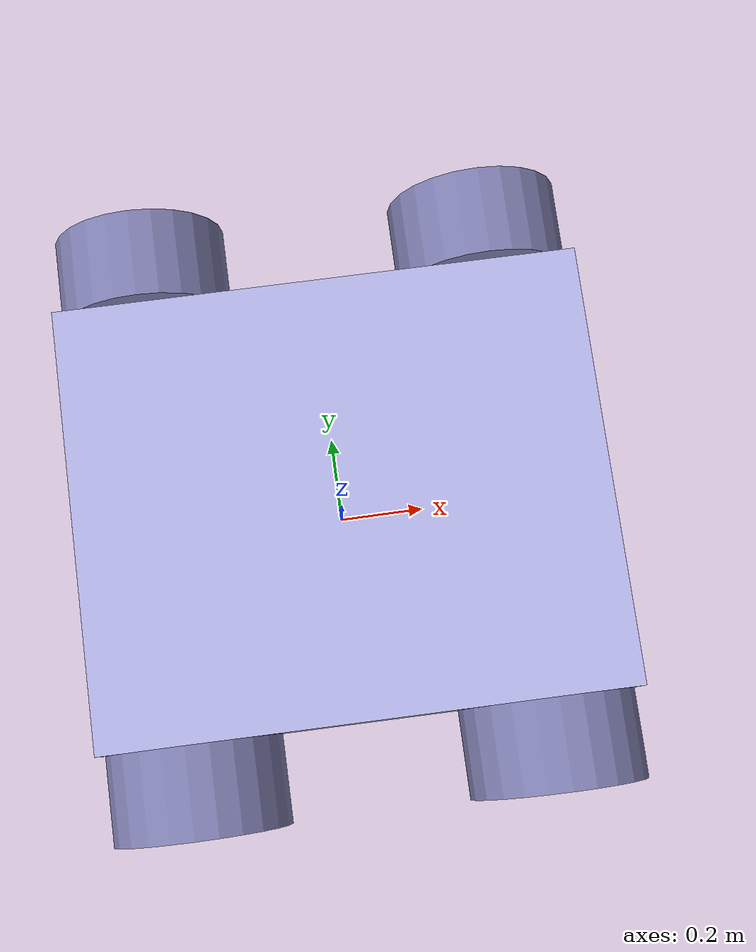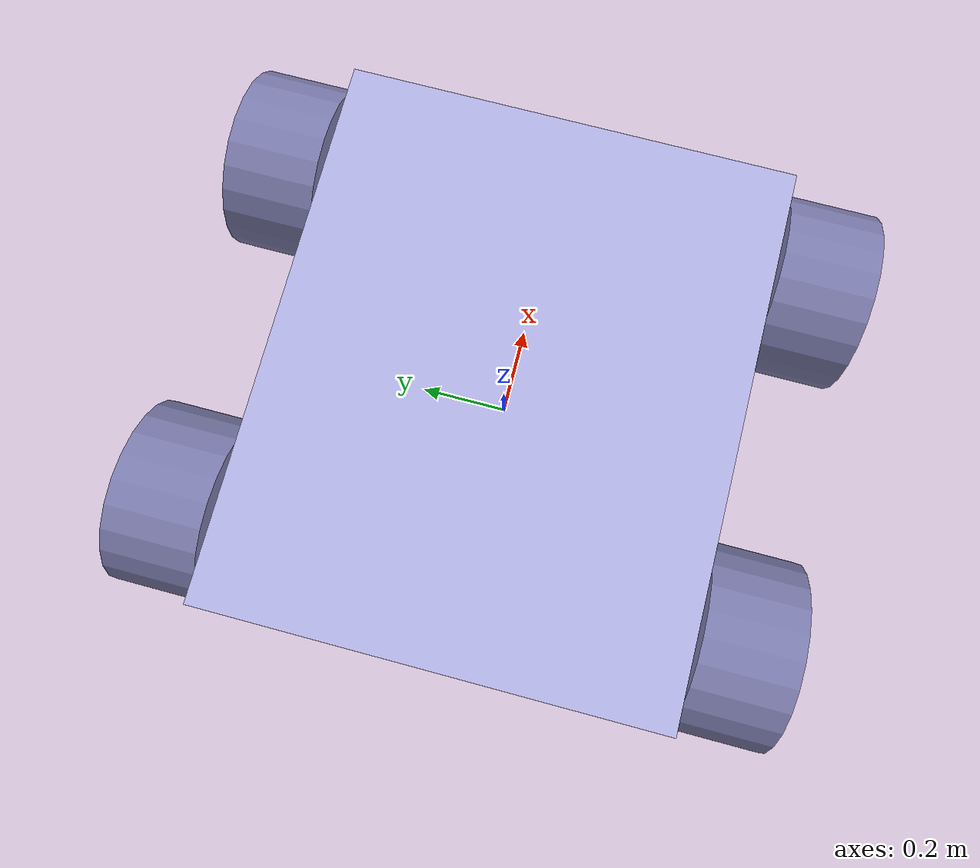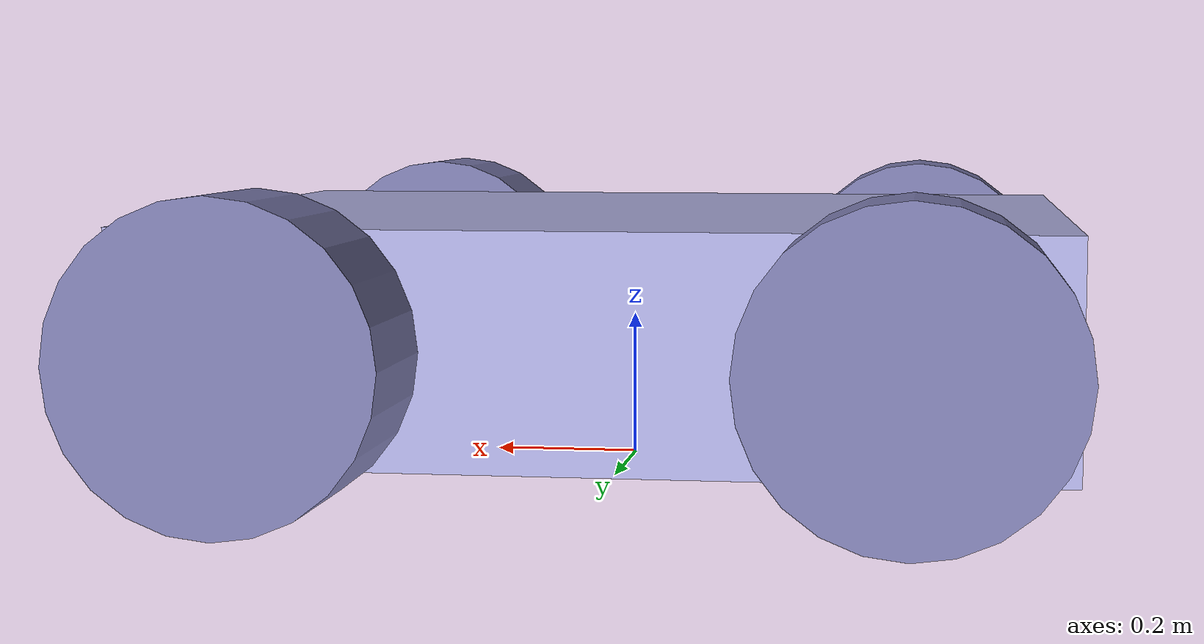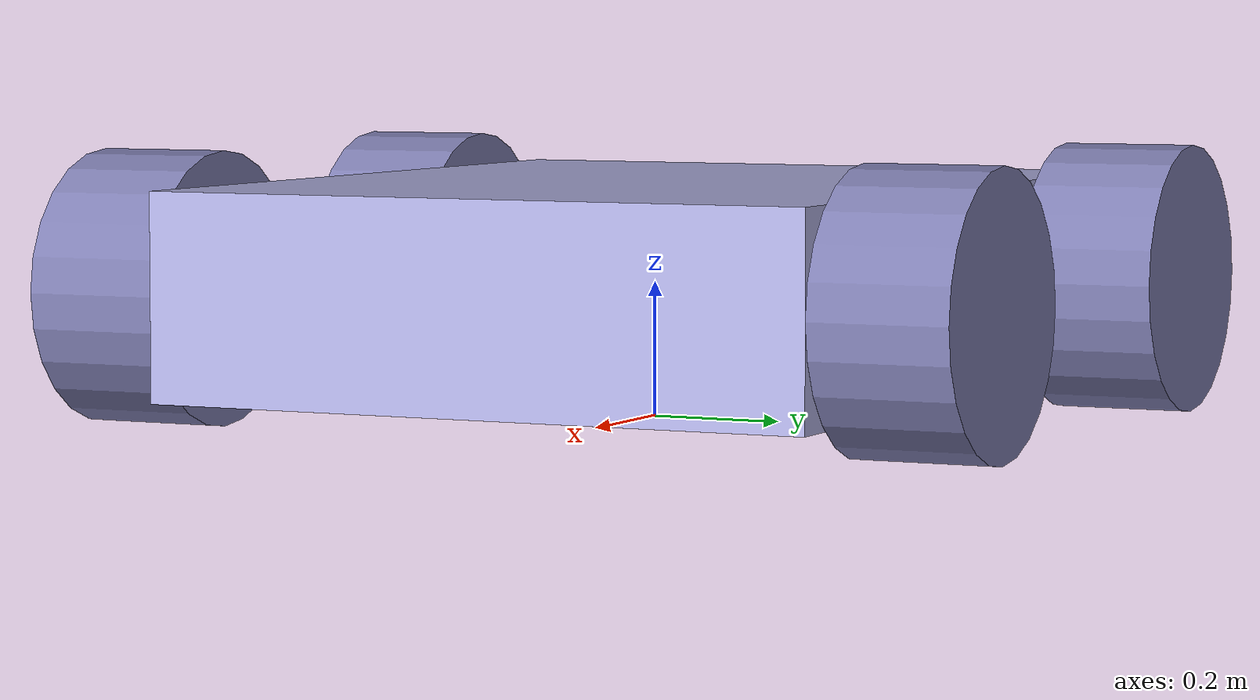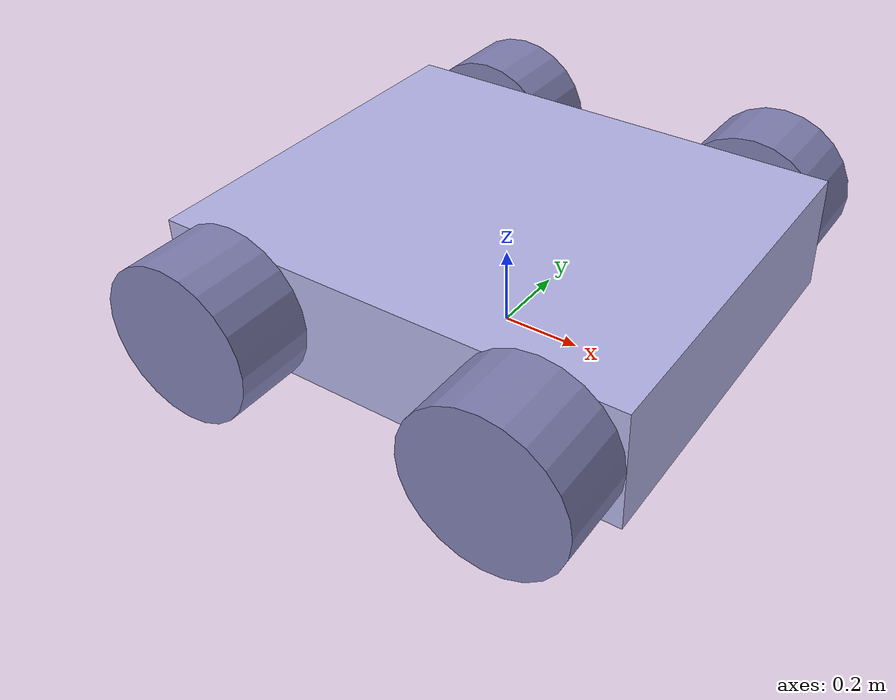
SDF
<?xml version="1.0" ?>
<sdf version="1.10">
    <model name='carrinho' canonical_link='chassis'>
        <link name='chassis'>
            <pose>0 0 0.2 0 0 0</pose>
            <inertial> <!--inertial properties of the link mass, inertia matrix-->
                <mass>1.14395</mass>
                <inertia>
                    <ixx>0.103909</ixx>
                    <ixy>0</ixy>
                    <ixz>0</ixz>
                    <iyy>0.145854</iyy>
                    <iyz>0</iyz>
                    <izz>0.232603</izz>
                </inertia>
            </inertial>
            <visual name='visual'>
                <geometry>
                    <box>
                        <size>1.2 1.0 0.3</size>
                    </box>
                </geometry>
                <!--let's add color to our link-->
                <material>
                    <ambient>0.7 0.7 0.9 1</ambient>
                    <diffuse>0.7 0.7 0.9 1</diffuse>
                    <specular>0.7 0.7 0.9 1</specular>
                </material>
            </visual>
            <collision name='collision'>
                <geometry>
                    <box>
                        <size>1.2 1.0 0.3</size>
                    </box>
                </geometry>
            </collision>
        </link>
        <link name='left_wheel'>
            <pose relative_to="chassis">-0.4 0.6 0 -1.5707 0 0</pose>
            <inertial>
                <mass>1</mass>
                <inertia>
                    <ixx>0.013333</ixx>
                    <ixy>0</ixy>
                    <ixz>0</ixz>
                    <iyy>0.013333</iyy>
                    <iyz>0</iyz>
                    <izz>0.02</izz>
                </inertia>
            </inertial>
            <visual name='visual'>
                <geometry>
                    <cylinder>
                        <radius>0.2</radius>
                        <length>0.2</length>
                    </cylinder>
                </geometry>
                <material>
                    <ambient>0.5 0.5 0.7 1</ambient>
                    <diffuse>0.5 0.5 0.7 1</diffuse>
                    <specular>0.5 0.5 0.7 1</specular>
                </material>
            </visual>
            <collision name='collision'>
                <geometry>
                    <cylinder>
                        <radius>0.2</radius>
                        <length>0.2</length>
                    </cylinder>
                </geometry>
            </collision>
        </link>
        <link name='right_wheel'>
            <pose relative_to="chassis">-0.4 -0.6 0 -1.5707 0 0</pose> <!--angles are in radian-->
            <inertial>
                <mass>1</mass>
                <inertia>
                    <ixx>0.013333</ixx>
                    <ixy>0</ixy>
                    <ixz>0</ixz>
                    <iyy>0.013333</iyy>
                    <iyz>0</iyz>
                    <izz>0.02</izz>
                </inertia>
            </inertial>
            <visual name='visual'>
                <geometry>
                    <cylinder>
                        <radius>0.2</radius>
                        <length>0.2</length>
                    </cylinder>
                </geometry>
                <material>
                    <ambient>0.5 0.5 0.7 1</ambient>
                    <diffuse>0.5 0.5 0.7 1</diffuse>
                    <specular>0.5 0.5 0.7 1</specular>
                </material>
            </visual>
            <collision name='collision'>
                <geometry>
                    <cylinder>
                        <radius>0.2</radius>
                        <length>0.2</length>
                    </cylinder>
                </geometry>
            </collision>
        </link>
        <link name='back_left_wheel'>
            <pose relative_to="chassis">0.4 0.6 0 -1.5707 0 0</pose>
            <inertial>
                <mass>1</mass>
                <inertia>
                    <ixx>0.013333</ixx>
                    <ixy>0</ixy>
                    <ixz>0</ixz>
                    <iyy>0.013333</iyy>
                    <iyz>0</iyz>
                    <izz>0.02</izz>
                </inertia>
            </inertial>
            <visual name='visual'>
                <geometry>
                    <cylinder>
                        <radius>0.2</radius>
                        <length>0.2</length>
                    </cylinder>
                </geometry>
                <material>
                    <ambient>0.5 0.5 0.7 1</ambient>
                    <diffuse>0.5 0.5 0.7 1</diffuse>
                    <specular>0.5 0.5 0.7 1</specular>
                </material>
            </visual>
            <collision name='collision'>
                <geometry>
                    <cylinder>
                        <radius>0.2</radius>
                        <length>0.2</length>
                    </cylinder>
                </geometry>
            </collision>
        </link>
        <link name='back_right_wheel'>
            <pose relative_to="chassis">0.4 -0.6 0 -1.5707 0 0</pose> <!--angles are in radian-->
            <inertial>
                <mass>1</mass>
                <inertia>
                    <ixx>0.013333</ixx>
                    <ixy>0</ixy>
                    <ixz>0</ixz>
                    <iyy>0.013333</iyy>
                    <iyz>0</iyz>
                    <izz>0.02</izz>
                </inertia>
            </inertial>
            <visual name='visual'>
                <geometry>
                    <cylinder>
                        <radius>0.2</radius>
                        <length>0.2</length>
                    </cylinder>
                </geometry>
                <material>
                    <ambient>0.5 0.5 0.7 1</ambient>
                    <diffuse>0.5 0.5 0.7 1</diffuse>
                    <specular>0.5 0.5 0.7 1</specular>
                </material>
            </visual>
            <collision name='collision'>
                <geometry>
                    <cylinder>
                        <radius>0.2</radius>
                        <length>0.2</length>
                    </cylinder>
                </geometry>
            </collision>
        </link>
        <joint name='left_wheel_joint' type='revolute'>
            <pose relative_to='left_wheel'/>
            <parent>chassis</parent>
            <child>left_wheel</child>
            <axis>
                <xyz expressed_in="chassis">0 1 0</xyz> <!--can be defined as any frame or even arbitrary frames-->
                <limit>
                    <lower>-1.79769e+308</lower>    <!--negative infinity-->
                    <upper>1.79769e+308</upper>     <!--positive infinity-->
                </limit>
            </axis>
        </joint>
        <joint name='right_wheel_joint' type='revolute'>
            <pose relative_to='right_wheel'/>
            <parent>chassis</parent>
            <child>right_wheel</child>
            <axis>
                <xyz expressed_in="chassis">0 1 0</xyz>
                <limit>
                    <lower>-1.79769e+308</lower>    <!--negative infinity-->
                    <upper>1.79769e+308</upper>     <!--positive infinity-->
                </limit>
            </axis>
        </joint>
        <joint name='back_left_wheel_joint' type='revolute'>
            <pose relative_to='back_left_wheel'/>
            <parent>chassis</parent>
            <child>back_left_wheel</child>
            <axis>
                <xyz expressed_in="chassis">0 1 0</xyz> <!--can be defined as any frame or even arbitrary frames-->
                <limit>
                    <lower>-1.79769e+308</lower>    <!--negative infinity-->
                    <upper>1.79769e+308</upper>     <!--positive infinity-->
                </limit>
            </axis>
        </joint>
        <joint name='back_right_wheel_joint' type='revolute'>
            <pose relative_to='back_right_wheel'/>
            <parent>chassis</parent>
            <child>back_right_wheel</child>
            <axis>
                <xyz expressed_in="chassis">0 1 0</xyz>
                <limit>
                    <lower>-1.79769e+308</lower>    <!--negative infinity-->
                    <upper>1.79769e+308</upper>     <!--positive infinity-->
                </limit>
            </axis>
        </joint>
    </model>
</sdf>
